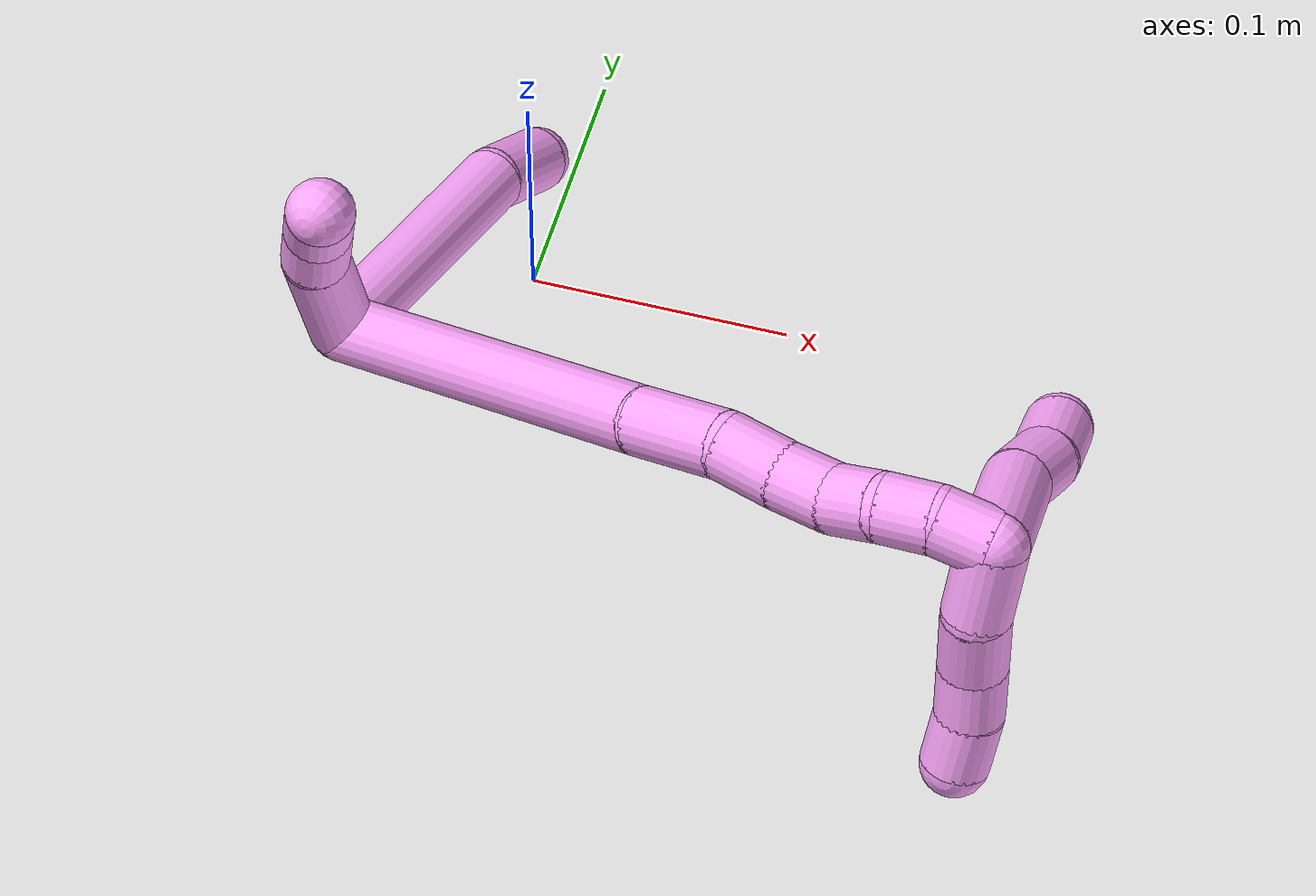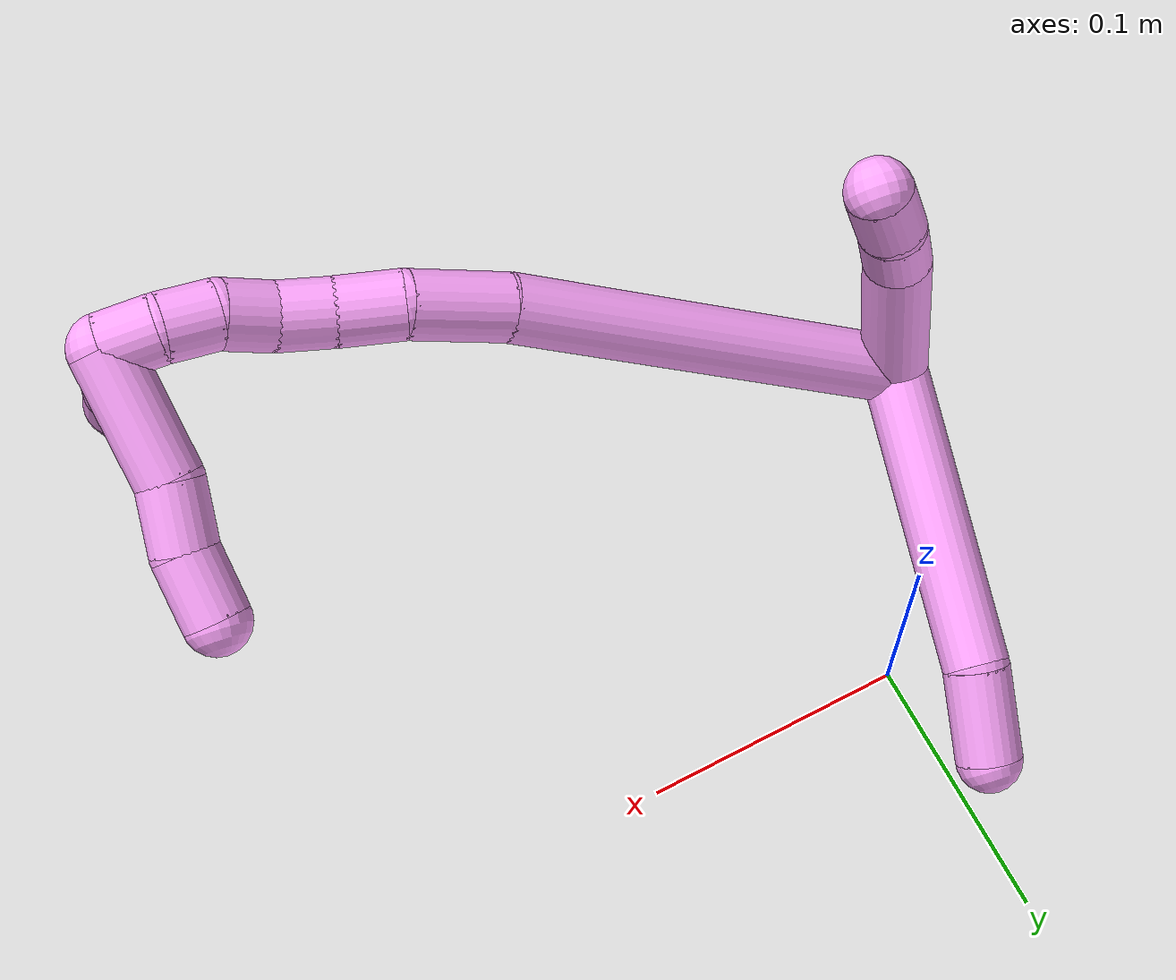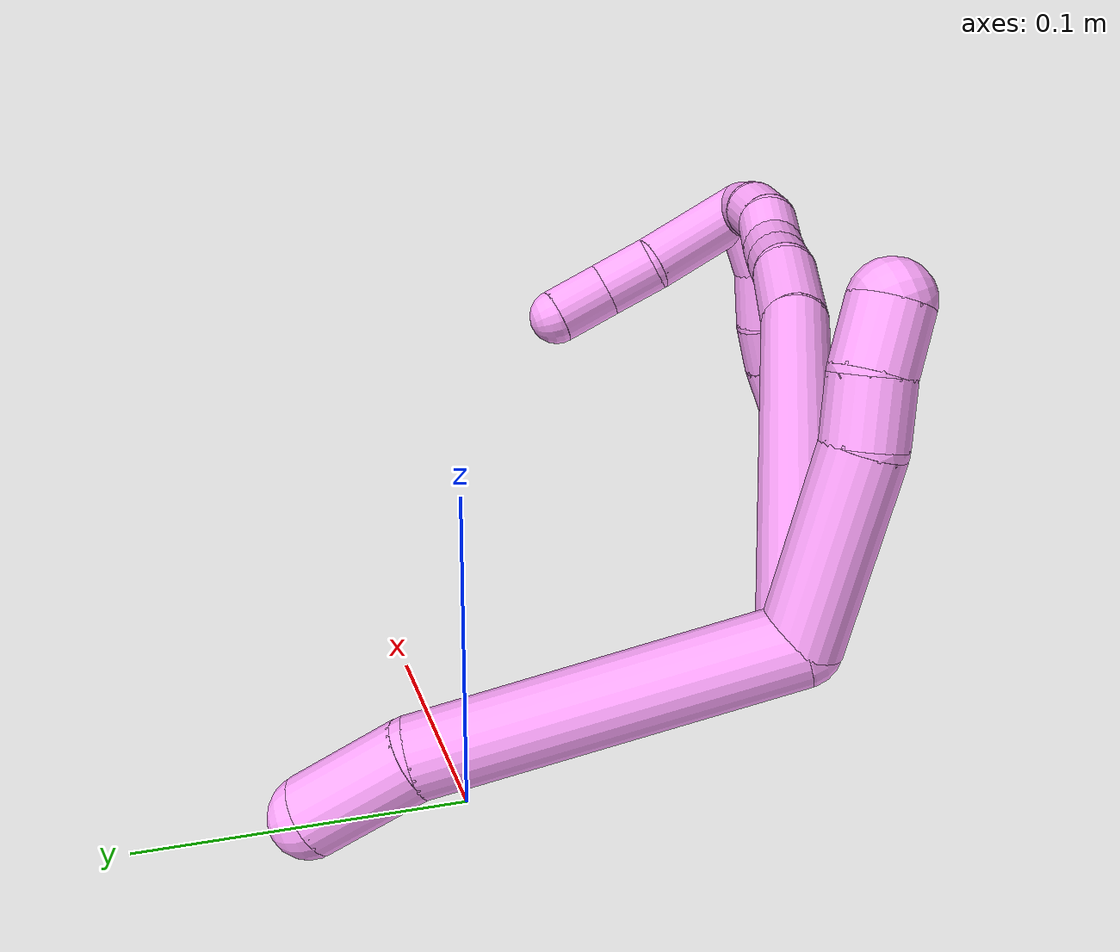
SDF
<sdf version="1.7">
 <world name="default">
  <model name="4">
   <static>0</static>
   <link name="4">
    <collision name="collision-cylinder-e_1_2_8">
     <pose>0.001575 -0.003906 0.05709 0.068304 0.027525 0.00094</pose>
     <geometry><cylinder><radius>0.0125</radius><length>0.114491</length></cylinder></geometry>
     <surface>
      <friction><ode><mu>1.16</mu><mu2>1.16</mu2><slip1>0</slip1><slip2>0</slip2></ode></friction>
      <contact><ode><kp>1e+06</kp><kd>1</kd><max_vel>0</max_vel><min_depth>0.001</min_depth></ode></contact>
     </surface>
    </collision>
    <visual name="visual-cylinder-e_1_2_8">
     <pose>0.001575 -0.003906 0.05709 0.068304 0.027525 0.00094</pose>
     <geometry><cylinder><radius>0.0125</radius><length>0.114491</length></cylinder></geometry>
     <material><ambient>1 0.65098 0.996078 1</ambient></material>
    </visual>
    <collision name="collision-cylinder-e_2_8_6">
     <pose>0.007248 -0.005704 0.131327 -0.122273 0.232853 -0.014318</pose>
     <geometry><cylinder><radius>0.0125</radius><length>0.035509</length></cylinder></geometry>
     <surface>
      <friction><ode><mu>1.16</mu><mu2>1.16</mu2><slip1>0</slip1><slip2>0</slip2></ode></friction>
      <contact><ode><kp>1e+06</kp><kd>1</kd><max_vel>0</max_vel><min_depth>0.001</min_depth></ode></contact>
     </surface>
    </collision>
    <visual name="visual-cylinder-e_2_8_6">
     <pose>0.007248 -0.005704 0.131327 -0.122273 0.232853 -0.014318</pose>
     <geometry><cylinder><radius>0.0125</radius><length>0.035509</length></cylinder></geometry>
     <material><ambient>1 0.65098 0.996078 1</ambient></material>
    </visual>
    <collision name="collision-cylinder-e_1_2_9">
     <pose>-0.014471 -0.020177 -0.016267 2.24931 -0.509227 -0.996654</pose>
     <geometry><cylinder><radius>0.0125</radius><length>0.059367</length></cylinder></geometry>
     <surface>
      <friction><ode><mu>1.16</mu><mu2>1.16</mu2><slip1>0</slip1><slip2>0</slip2></ode></friction>
      <contact><ode><kp>1e+06</kp><kd>1</kd><max_vel>0</max_vel><min_depth>0.001</min_depth></ode></contact>
     </surface>
    </collision>
    <visual name="visual-cylinder-e_1_2_9">
     <pose>-0.014471 -0.020177 -0.016267 2.24931 -0.509227 -0.996654</pose>
     <geometry><cylinder><radius>0.0125</radius><length>0.059367</length></cylinder></geometry>
     <material><ambient>1 0.65098 0.996078 1</ambient></material>
    </visual>
    <collision name="collision-cylinder-e_2_9_10">
     <pose>-0.032756 -0.04866 -0.036722 2.03785 -0.389118 -0.619503</pose>
     <geometry><cylinder><radius>0.0125</radius><length>0.020109</length></cylinder></geometry>
     <surface>
      <friction><ode><mu>1.16</mu><mu2>1.16</mu2><slip1>0</slip1><slip2>0</slip2></ode></friction>
      <contact><ode><kp>1e+06</kp><kd>1</kd><max_vel>0</max_vel><min_depth>0.001</min_depth></ode></contact>
     </surface>
    </collision>
    <visual name="visual-cylinder-e_2_9_10">
     <pose>-0.032756 -0.04866 -0.036722 2.03785 -0.389118 -0.619503</pose>
     <geometry><cylinder><radius>0.0125</radius><length>0.020109</length></cylinder></geometry>
     <material><ambient>1 0.65098 0.996078 1</ambient></material>
    </visual>
    <collision name="collision-cylinder-e_3_10_5">
     <pose>-0.03925 -0.064974 -0.046743 2.20028 -0.264136 -0.510778</pose>
     <geometry><cylinder><radius>0.0125</radius><length>0.020524</length></cylinder></geometry>
     <surface>
      <friction><ode><mu>1.16</mu><mu2>1.16</mu2><slip1>0</slip1><slip2>0</slip2></ode></friction>
      <contact><ode><kp>1e+06</kp><kd>1</kd><max_vel>0</max_vel><min_depth>0.001</min_depth></ode></contact>
     </surface>
    </collision>
    <visual name="visual-cylinder-e_3_10_5">
     <pose>-0.03925 -0.064974 -0.046743 2.20028 -0.264136 -0.510778</pose>
     <geometry><cylinder><radius>0.0125</radius><length>0.020524</length></cylinder></geometry>
     <material><ambient>1 0.65098 0.996078 1</ambient></material>
    </visual>
    <collision name="collision-cylinder-e_1_2_11">
     <pose>0.041832 -0.05983 -0.028301 2.01263 0.563644 0.857713</pose>
     <geometry><cylinder><radius>0.0125</radius><length>0.156594</length></cylinder></geometry>
     <surface>
      <friction><ode><mu>1.16</mu><mu2>1.16</mu2><slip1>0</slip1><slip2>0</slip2></ode></friction>
      <contact><ode><kp>1e+06</kp><kd>1</kd><max_vel>0</max_vel><min_depth>0.001</min_depth></ode></contact>
     </surface>
    </collision>
    <visual name="visual-cylinder-e_1_2_11">
     <pose>0.041832 -0.05983 -0.028301 2.01263 0.563644 0.857713</pose>
     <geometry><cylinder><radius>0.0125</radius><length>0.156594</length></cylinder></geometry>
     <material><ambient>1 0.65098 0.996078 1</ambient></material>
    </visual>
    <collision name="collision-cylinder-e_2_11_12">
     <pose>0.094992 -0.133749 -0.061439 1.90157 0.650171 0.882157</pose>
     <geometry><cylinder><radius>0.0125</radius><length>0.03743</length></cylinder></geometry>
     <surface>
      <friction><ode><mu>1.16</mu><mu2>1.16</mu2><slip1>0</slip1><slip2>0</slip2></ode></friction>
      <contact><ode><kp>1e+06</kp><kd>1</kd><max_vel>0</max_vel><min_depth>0.001</min_depth></ode></contact>
     </surface>
    </collision>
    <visual name="visual-cylinder-e_2_11_12">
     <pose>0.094992 -0.133749 -0.061439 1.90157 0.650171 0.882157</pose>
     <geometry><cylinder><radius>0.0125</radius><length>0.03743</length></cylinder></geometry>
     <material><ambient>1 0.65098 0.996078 1</ambient></material>
    </visual>
    <collision name="collision-cylinder-e_3_12_13">
     <pose>0.116181 -0.154563 -0.06852 1.89261 0.947481 1.23661</pose>
     <geometry><cylinder><radius>0.0125</radius><length>0.024289</length></cylinder></geometry>
     <surface>
      <friction><ode><mu>1.16</mu><mu2>1.16</mu2><slip1>0</slip1><slip2>0</slip2></ode></friction>
      <contact><ode><kp>1e+06</kp><kd>1</kd><max_vel>0</max_vel><min_depth>0.001</min_depth></ode></contact>
     </surface>
    </collision>
    <visual name="visual-cylinder-e_3_12_13">
     <pose>0.116181 -0.154563 -0.06852 1.89261 0.947481 1.23661</pose>
     <geometry><cylinder><radius>0.0125</radius><length>0.024289</length></cylinder></geometry>
     <material><ambient>1 0.65098 0.996078 1</ambient></material>
    </visual>
    <collision name="collision-cylinder-e_4_13_14">
     <pose>0.133965 -0.167853 -0.072923 1.88885 0.853455 1.12203</pose>
     <geometry><cylinder><radius>0.0125</radius><length>0.021029</length></cylinder></geometry>
     <surface>
      <friction><ode><mu>1.16</mu><mu2>1.16</mu2><slip1>0</slip1><slip2>0</slip2></ode></friction>
      <contact><ode><kp>1e+06</kp><kd>1</kd><max_vel>0</max_vel><min_depth>0.001</min_depth></ode></contact>
     </surface>
    </collision>
    <visual name="visual-cylinder-e_4_13_14">
     <pose>0.133965 -0.167853 -0.072923 1.88885 0.853455 1.12203</pose>
     <geometry><cylinder><radius>0.0125</radius><length>0.021029</length></cylinder></geometry>
     <material><ambient>1 0.65098 0.996078 1</ambient></material>
    </visual>
    <collision name="collision-cylinder-e_5_14_15">
     <pose>0.147187 -0.182677 -0.077588 1.86515 0.550681 0.727796</pose>
     <geometry><cylinder><radius>0.0125</radius><length>0.020252</length></cylinder></geometry>
     <surface>
      <friction><ode><mu>1.16</mu><mu2>1.16</mu2><slip1>0</slip1><slip2>0</slip2></ode></friction>
      <contact><ode><kp>1e+06</kp><kd>1</kd><max_vel>0</max_vel><min_depth>0.001</min_depth></ode></contact>
     </surface>
    </collision>
    <visual name="visual-cylinder-e_5_14_15">
     <pose>0.147187 -0.182677 -0.077588 1.86515 0.550681 0.727796</pose>
     <geometry><cylinder><radius>0.0125</radius><length>0.020252</length></cylinder></geometry>
     <material><ambient>1 0.65098 0.996078 1</ambient></material>
    </visual>
    <collision name="collision-cylinder-e_6_15_16">
     <pose>0.159695 -0.197946 -0.080234 1.59114 0.799232 0.813919</pose>
     <geometry><cylinder><radius>0.0125</radius><length>0.020115</length></cylinder></geometry>
     <surface>
      <friction><ode><mu>1.16</mu><mu2>1.16</mu2><slip1>0</slip1><slip2>0</slip2></ode></friction>
      <contact><ode><kp>1e+06</kp><kd>1</kd><max_vel>0</max_vel><min_depth>0.001</min_depth></ode></contact>
     </surface>
    </collision>
    <visual name="visual-cylinder-e_6_15_16">
     <pose>0.159695 -0.197946 -0.080234 1.59114 0.799232 0.813919</pose>
     <geometry><cylinder><radius>0.0125</radius><length>0.020115</length></cylinder></geometry>
     <material><ambient>1 0.65098 0.996078 1</ambient></material>
    </visual>
    <collision name="collision-cylinder-e_7_16_1">
     <pose>0.175722 -0.209962 -0.080017 1.49898 1.05343 0.992093</pose>
     <geometry><cylinder><radius>0.0125</radius><length>0.020292</length></cylinder></geometry>
     <surface>
      <friction><ode><mu>1.16</mu><mu2>1.16</mu2><slip1>0</slip1><slip2>0</slip2></ode></friction>
      <contact><ode><kp>1e+06</kp><kd>1</kd><max_vel>0</max_vel><min_depth>0.001</min_depth></ode></contact>
     </surface>
    </collision>
    <visual name="visual-cylinder-e_7_16_1">
     <pose>0.175722 -0.209962 -0.080017 1.49898 1.05343 0.992093</pose>
     <geometry><cylinder><radius>0.0125</radius><length>0.020292</length></cylinder></geometry>
     <material><ambient>1 0.65098 0.996078 1</ambient></material>
    </visual>
    <collision name="collision-cylinder-e_1_1_17">
     <pose>0.183601 -0.209273 -0.055533 -0.23179 -0.037861 0.004408</pose>
     <geometry><cylinder><radius>0.0125</radius><length>0.049608</length></cylinder></geometry>
     <surface>
      <friction><ode><mu>1.16</mu><mu2>1.16</mu2><slip1>0</slip1><slip2>0</slip2></ode></friction>
      <contact><ode><kp>1e+06</kp><kd>1</kd><max_vel>0</max_vel><min_depth>0.001</min_depth></ode></contact>
     </surface>
    </collision>
    <visual name="visual-cylinder-e_1_1_17">
     <pose>0.183601 -0.209273 -0.055533 -0.23179 -0.037861 0.004408</pose>
     <geometry><cylinder><radius>0.0125</radius><length>0.049608</length></cylinder></geometry>
     <material><ambient>1 0.65098 0.996078 1</ambient></material>
    </visual>
    <collision name="collision-cylinder-e_2_17_18">
     <pose>0.184916 -0.202434 -0.019254 -0.093916 0.182505 -0.0086</pose>
     <geometry><cylinder><radius>0.0125</radius><length>0.024832</length></cylinder></geometry>
     <surface>
      <friction><ode><mu>1.16</mu><mu2>1.16</mu2><slip1>0</slip1><slip2>0</slip2></ode></friction>
      <contact><ode><kp>1e+06</kp><kd>1</kd><max_vel>0</max_vel><min_depth>0.001</min_depth></ode></contact>
     </surface>
    </collision>
    <visual name="visual-cylinder-e_2_17_18">
     <pose>0.184916 -0.202434 -0.019254 -0.093916 0.182505 -0.0086</pose>
     <geometry><cylinder><radius>0.0125</radius><length>0.024832</length></cylinder></geometry>
     <material><ambient>1 0.65098 0.996078 1</ambient></material>
    </visual>
    <collision name="collision-cylinder-e_3_18_4">
     <pose>0.186727 -0.198911 0.005451 -0.187316 -0.034603 0.003251</pose>
     <geometry><cylinder><radius>0.0125</radius><length>0.02556</length></cylinder></geometry>
     <surface>
      <friction><ode><mu>1.16</mu><mu2>1.16</mu2><slip1>0</slip1><slip2>0</slip2></ode></friction>
      <contact><ode><kp>1e+06</kp><kd>1</kd><max_vel>0</max_vel><min_depth>0.001</min_depth></ode></contact>
     </surface>
    </collision>
    <visual name="visual-cylinder-e_3_18_4">
     <pose>0.186727 -0.198911 0.005451 -0.187316 -0.034603 0.003251</pose>
     <geometry><cylinder><radius>0.0125</radius><length>0.02556</length></cylinder></geometry>
     <material><ambient>1 0.65098 0.996078 1</ambient></material>
    </visual>
    <collision name="collision-cylinder-e_1_1_19">
     <pose>0.192824 -0.202577 -0.080003 -1.59872 0.589104 -0.604803</pose>
     <geometry><cylinder><radius>0.0125</radius><length>0.029817</length></cylinder></geometry>
     <surface>
      <friction><ode><mu>1.16</mu><mu2>1.16</mu2><slip1>0</slip1><slip2>0</slip2></ode></friction>
      <contact><ode><kp>1e+06</kp><kd>1</kd><max_vel>0</max_vel><min_depth>0.001</min_depth></ode></contact>
     </surface>
    </collision>
    <visual name="visual-cylinder-e_1_1_19">
     <pose>0.192824 -0.202577 -0.080003 -1.59872 0.589104 -0.604803</pose>
     <geometry><cylinder><radius>0.0125</radius><length>0.029817</length></cylinder></geometry>
     <material><ambient>1 0.65098 0.996078 1</ambient></material>
    </visual>
    <collision name="collision-cylinder-e_2_19_20">
     <pose>0.20894 -0.180035 -0.077349 -1.28345 0.637086 -0.483206</pose>
     <geometry><cylinder><radius>0.0125</radius><length>0.026336</length></cylinder></geometry>
     <surface>
      <friction><ode><mu>1.16</mu><mu2>1.16</mu2><slip1>0</slip1><slip2>0</slip2></ode></friction>
      <contact><ode><kp>1e+06</kp><kd>1</kd><max_vel>0</max_vel><min_depth>0.001</min_depth></ode></contact>
     </surface>
    </collision>
    <visual name="visual-cylinder-e_2_19_20">
     <pose>0.20894 -0.180035 -0.077349 -1.28345 0.637086 -0.483206</pose>
     <geometry><cylinder><radius>0.0125</radius><length>0.026336</length></cylinder></geometry>
     <material><ambient>1 0.65098 0.996078 1</ambient></material>
    </visual>
    <collision name="collision-cylinder-e_3_20_21">
     <pose>0.223763 -0.161698 -0.073645 -1.48499 0.704903 -0.651042</pose>
     <geometry><cylinder><radius>0.0125</radius><length>0.021577</length></cylinder></geometry>
     <surface>
      <friction><ode><mu>1.16</mu><mu2>1.16</mu2><slip1>0</slip1><slip2>0</slip2></ode></friction>
      <contact><ode><kp>1e+06</kp><kd>1</kd><max_vel>0</max_vel><min_depth>0.001</min_depth></ode></contact>
     </surface>
    </collision>
    <visual name="visual-cylinder-e_3_20_21">
     <pose>0.223763 -0.161698 -0.073645 -1.48499 0.704903 -0.651042</pose>
     <geometry><cylinder><radius>0.0125</radius><length>0.021577</length></cylinder></geometry>
     <material><ambient>1 0.65098 0.996078 1</ambient></material>
    </visual>
    <collision name="collision-cylinder-e_4_21_3">
     <pose>0.236642 -0.144063 -0.073229 -1.60125 0.557138 -0.57345</pose>
     <geometry><cylinder><radius>0.0125</radius><length>0.022271</length></cylinder></geometry>
     <surface>
      <friction><ode><mu>1.16</mu><mu2>1.16</mu2><slip1>0</slip1><slip2>0</slip2></ode></friction>
      <contact><ode><kp>1e+06</kp><kd>1</kd><max_vel>0</max_vel><min_depth>0.001</min_depth></ode></contact>
     </surface>
    </collision>
    <visual name="visual-cylinder-e_4_21_3">
     <pose>0.236642 -0.144063 -0.073229 -1.60125 0.557138 -0.57345</pose>
     <geometry><cylinder><radius>0.0125</radius><length>0.022271</length></cylinder></geometry>
     <material><ambient>1 0.65098 0.996078 1</ambient></material>
    </visual>
    <collision name="collision-sphere-3">
     <pose>0.24253 -0.134616 -0.073516 0 -0 0</pose>
     <geometry><sphere><radius>0.0125</radius></sphere></geometry>
     <surface>
      <friction><ode><mu>1.16</mu><mu2>1.16</mu2><slip1>0</slip1><slip2>0</slip2></ode></friction>
      <contact><ode><kp>1e+06</kp><kd>1</kd><max_vel>0</max_vel><min_depth>0.001</min_depth></ode></contact>
     </surface>
    </collision>
    <visual name="visual-sphere-3">
     <pose>0.24253 -0.134616 -0.073516 0 -0 0</pose>
     <geometry><sphere><radius>0.0125</radius></sphere></geometry>
     <material><ambient>1 0.65098 0.996078 1</ambient></material>
    </visual>
    <collision name="collision-sphere-21">
     <pose>0.230754 -0.15351 -0.072941 0 -0 0</pose>
     <geometry><sphere><radius>0.0125</radius></sphere></geometry>
     <surface>
      <friction><ode><mu>1.16</mu><mu2>1.16</mu2><slip1>0</slip1><slip2>0</slip2></ode></friction>
      <contact><ode><kp>1e+06</kp><kd>1</kd><max_vel>0</max_vel><min_depth>0.001</min_depth></ode></contact>
     </surface>
    </collision>
    <visual name="visual-sphere-21">
     <pose>0.230754 -0.15351 -0.072941 0 -0 0</pose>
     <geometry><sphere><radius>0.0125</radius></sphere></geometry>
     <material><ambient>1 0.65098 0.996078 1</ambient></material>
    </visual>
    <collision name="collision-sphere-20">
     <pose>0.216773 -0.169885 -0.074349 0 -0 0</pose>
     <geometry><sphere><radius>0.0125</radius></sphere></geometry>
     <surface>
      <friction><ode><mu>1.16</mu><mu2>1.16</mu2><slip1>0</slip1><slip2>0</slip2></ode></friction>
      <contact><ode><kp>1e+06</kp><kd>1</kd><max_vel>0</max_vel><min_depth>0.001</min_depth></ode></contact>
     </surface>
    </collision>
    <visual name="visual-sphere-20">
     <pose>0.216773 -0.169885 -0.074349 0 -0 0</pose>
     <geometry><sphere><radius>0.0125</radius></sphere></geometry>
     <material><ambient>1 0.65098 0.996078 1</ambient></material>
    </visual>
    <collision name="collision-sphere-19">
     <pose>0.201107 -0.190186 -0.080349 0 -0 0</pose>
     <geometry><sphere><radius>0.0125</radius></sphere></geometry>
     <surface>
      <friction><ode><mu>1.16</mu><mu2>1.16</mu2><slip1>0</slip1><slip2>0</slip2></ode></friction>
      <contact><ode><kp>1e+06</kp><kd>1</kd><max_vel>0</max_vel><min_depth>0.001</min_depth></ode></contact>
     </surface>
    </collision>
    <visual name="visual-sphere-19">
     <pose>0.201107 -0.190186 -0.080349 0 -0 0</pose>
     <geometry><sphere><radius>0.0125</radius></sphere></geometry>
     <material><ambient>1 0.65098 0.996078 1</ambient></material>
    </visual>
    <collision name="collision-sphere-5">
     <pose>-0.041929 -0.072982 -0.052574 0 -0 0</pose>
     <geometry><sphere><radius>0.0125</radius></sphere></geometry>
     <surface>
      <friction><ode><mu>1.16</mu><mu2>1.16</mu2><slip1>0</slip1><slip2>0</slip2></ode></friction>
      <contact><ode><kp>1e+06</kp><kd>1</kd><max_vel>0</max_vel><min_depth>0.001</min_depth></ode></contact>
     </surface>
    </collision>
    <visual name="visual-sphere-5">
     <pose>-0.041929 -0.072982 -0.052574 0 -0 0</pose>
     <geometry><sphere><radius>0.0125</radius></sphere></geometry>
     <material><ambient>1 0.65098 0.996078 1</ambient></material>
    </visual>
    <collision name="collision-sphere-10">
     <pose>-0.03657 -0.056967 -0.040911 0 -0 0</pose>
     <geometry><sphere><radius>0.0125</radius></sphere></geometry>
     <surface>
      <friction><ode><mu>1.16</mu><mu2>1.16</mu2><slip1>0</slip1><slip2>0</slip2></ode></friction>
      <contact><ode><kp>1e+06</kp><kd>1</kd><max_vel>0</max_vel><min_depth>0.001</min_depth></ode></contact>
     </surface>
    </collision>
    <visual name="visual-sphere-10">
     <pose>-0.03657 -0.056967 -0.040911 0 -0 0</pose>
     <geometry><sphere><radius>0.0125</radius></sphere></geometry>
     <material><ambient>1 0.65098 0.996078 1</ambient></material>
    </visual>
    <collision name="collision-sphere-6">
     <pose>0.011345 -0.003597 0.148473 0 -0 0</pose>
     <geometry><sphere><radius>0.0125</radius></sphere></geometry>
     <surface>
      <friction><ode><mu>1.16</mu><mu2>1.16</mu2><slip1>0</slip1><slip2>0</slip2></ode></friction>
      <contact><ode><kp>1e+06</kp><kd>1</kd><max_vel>0</max_vel><min_depth>0.001</min_depth></ode></contact>
     </surface>
    </collision>
    <visual name="visual-sphere-6">
     <pose>0.011345 -0.003597 0.148473 0 -0 0</pose>
     <geometry><sphere><radius>0.0125</radius></sphere></geometry>
     <material><ambient>1 0.65098 0.996078 1</ambient></material>
    </visual>
    <collision name="collision-sphere-9">
     <pose>-0.028942 -0.040354 -0.032533 0 -0 0</pose>
     <geometry><sphere><radius>0.0125</radius></sphere></geometry>
     <surface>
      <friction><ode><mu>1.16</mu><mu2>1.16</mu2><slip1>0</slip1><slip2>0</slip2></ode></friction>
      <contact><ode><kp>1e+06</kp><kd>1</kd><max_vel>0</max_vel><min_depth>0.001</min_depth></ode></contact>
     </surface>
    </collision>
    <visual name="visual-sphere-9">
     <pose>-0.028942 -0.040354 -0.032533 0 -0 0</pose>
     <geometry><sphere><radius>0.0125</radius></sphere></geometry>
     <material><ambient>1 0.65098 0.996078 1</ambient></material>
    </visual>
    <collision name="collision-sphere-2">
     <geometry><sphere><radius>0.0125</radius></sphere></geometry>
     <surface>
      <friction><ode><mu>1.16</mu><mu2>1.16</mu2><slip1>0</slip1><slip2>0</slip2></ode></friction>
      <contact><ode><kp>1e+06</kp><kd>1</kd><max_vel>0</max_vel><min_depth>0.001</min_depth></ode></contact>
     </surface>
    </collision>
    <visual name="visual-sphere-2">
     <geometry><sphere><radius>0.0125</radius></sphere></geometry>
     <material><ambient>1 0.65098 0.996078 1</ambient></material>
    </visual>
    <collision name="collision-sphere-8">
     <pose>0.003151 -0.007811 0.114181 0 -0 0</pose>
     <geometry><sphere><radius>0.0125</radius></sphere></geometry>
     <surface>
      <friction><ode><mu>1.16</mu><mu2>1.16</mu2><slip1>0</slip1><slip2>0</slip2></ode></friction>
      <contact><ode><kp>1e+06</kp><kd>1</kd><max_vel>0</max_vel><min_depth>0.001</min_depth></ode></contact>
     </surface>
    </collision>
    <visual name="visual-sphere-8">
     <pose>0.003151 -0.007811 0.114181 0 -0 0</pose>
     <geometry><sphere><radius>0.0125</radius></sphere></geometry>
     <material><ambient>1 0.65098 0.996078 1</ambient></material>
    </visual>
    <collision name="collision-sphere-11">
     <pose>0.083663 -0.119659 -0.056601 0 -0 0</pose>
     <geometry><sphere><radius>0.0125</radius></sphere></geometry>
     <surface>
      <friction><ode><mu>1.16</mu><mu2>1.16</mu2><slip1>0</slip1><slip2>0</slip2></ode></friction>
      <contact><ode><kp>1e+06</kp><kd>1</kd><max_vel>0</max_vel><min_depth>0.001</min_depth></ode></contact>
     </surface>
    </collision>
    <visual name="visual-sphere-11">
     <pose>0.083663 -0.119659 -0.056601 0 -0 0</pose>
     <geometry><sphere><radius>0.0125</radius></sphere></geometry>
     <material><ambient>1 0.65098 0.996078 1</ambient></material>
    </visual>
    <collision name="collision-sphere-12">
     <pose>0.106321 -0.147838 -0.066277 0 -0 0</pose>
     <geometry><sphere><radius>0.0125</radius></sphere></geometry>
     <surface>
      <friction><ode><mu>1.16</mu><mu2>1.16</mu2><slip1>0</slip1><slip2>0</slip2></ode></friction>
      <contact><ode><kp>1e+06</kp><kd>1</kd><max_vel>0</max_vel><min_depth>0.001</min_depth></ode></contact>
     </surface>
    </collision>
    <visual name="visual-sphere-12">
     <pose>0.106321 -0.147838 -0.066277 0 -0 0</pose>
     <geometry><sphere><radius>0.0125</radius></sphere></geometry>
     <material><ambient>1 0.65098 0.996078 1</ambient></material>
    </visual>
    <collision name="collision-sphere-13">
     <pose>0.126042 -0.161288 -0.070762 0 -0 0</pose>
     <geometry><sphere><radius>0.0125</radius></sphere></geometry>
     <surface>
      <friction><ode><mu>1.16</mu><mu2>1.16</mu2><slip1>0</slip1><slip2>0</slip2></ode></friction>
      <contact><ode><kp>1e+06</kp><kd>1</kd><max_vel>0</max_vel><min_depth>0.001</min_depth></ode></contact>
     </surface>
    </collision>
    <visual name="visual-sphere-13">
     <pose>0.126042 -0.161288 -0.070762 0 -0 0</pose>
     <geometry><sphere><radius>0.0125</radius></sphere></geometry>
     <material><ambient>1 0.65098 0.996078 1</ambient></material>
    </visual>
    <collision name="collision-sphere-14">
     <pose>0.141888 -0.174419 -0.075085 0 -0 0</pose>
     <geometry><sphere><radius>0.0125</radius></sphere></geometry>
     <surface>
      <friction><ode><mu>1.16</mu><mu2>1.16</mu2><slip1>0</slip1><slip2>0</slip2></ode></friction>
      <contact><ode><kp>1e+06</kp><kd>1</kd><max_vel>0</max_vel><min_depth>0.001</min_depth></ode></contact>
     </surface>
    </collision>
    <visual name="visual-sphere-14">
     <pose>0.141888 -0.174419 -0.075085 0 -0 0</pose>
     <geometry><sphere><radius>0.0125</radius></sphere></geometry>
     <material><ambient>1 0.65098 0.996078 1</ambient></material>
    </visual>
    <collision name="collision-sphere-15">
     <pose>0.152485 -0.190934 -0.080092 0 -0 0</pose>
     <geometry><sphere><radius>0.0125</radius></sphere></geometry>
     <surface>
      <friction><ode><mu>1.16</mu><mu2>1.16</mu2><slip1>0</slip1><slip2>0</slip2></ode></friction>
      <contact><ode><kp>1e+06</kp><kd>1</kd><max_vel>0</max_vel><min_depth>0.001</min_depth></ode></contact>
     </surface>
    </collision>
    <visual name="visual-sphere-15">
     <pose>0.152485 -0.190934 -0.080092 0 -0 0</pose>
     <geometry><sphere><radius>0.0125</radius></sphere></geometry>
     <material><ambient>1 0.65098 0.996078 1</ambient></material>
    </visual>
    <collision name="collision-sphere-16">
     <pose>0.166904 -0.204957 -0.080377 0 -0 0</pose>
     <geometry><sphere><radius>0.0125</radius></sphere></geometry>
     <surface>
      <friction><ode><mu>1.16</mu><mu2>1.16</mu2><slip1>0</slip1><slip2>0</slip2></ode></friction>
      <contact><ode><kp>1e+06</kp><kd>1</kd><max_vel>0</max_vel><min_depth>0.001</min_depth></ode></contact>
     </surface>
    </collision>
    <visual name="visual-sphere-16">
     <pose>0.166904 -0.204957 -0.080377 0 -0 0</pose>
     <geometry><sphere><radius>0.0125</radius></sphere></geometry>
     <material><ambient>1 0.65098 0.996078 1</ambient></material>
    </visual>
    <collision name="collision-sphere-1">
     <pose>0.18454 -0.214967 -0.079657 0 -0 0</pose>
     <geometry><sphere><radius>0.0125</radius></sphere></geometry>
     <surface>
      <friction><ode><mu>1.16</mu><mu2>1.16</mu2><slip1>0</slip1><slip2>0</slip2></ode></friction>
      <contact><ode><kp>1e+06</kp><kd>1</kd><max_vel>0</max_vel><min_depth>0.001</min_depth></ode></contact>
     </surface>
    </collision>
    <visual name="visual-sphere-1">
     <pose>0.18454 -0.214967 -0.079657 0 -0 0</pose>
     <geometry><sphere><radius>0.0125</radius></sphere></geometry>
     <material><ambient>1 0.65098 0.996078 1</ambient></material>
    </visual>
    <collision name="collision-sphere-18">
     <pose>0.187169 -0.201289 -0.007098 0 -0 0</pose>
     <geometry><sphere><radius>0.0125</radius></sphere></geometry>
     <surface>
      <friction><ode><mu>1.16</mu><mu2>1.16</mu2><slip1>0</slip1><slip2>0</slip2></ode></friction>
      <contact><ode><kp>1e+06</kp><kd>1</kd><max_vel>0</max_vel><min_depth>0.001</min_depth></ode></contact>
     </surface>
    </collision>
    <visual name="visual-sphere-18">
     <pose>0.187169 -0.201289 -0.007098 0 -0 0</pose>
     <geometry><sphere><radius>0.0125</radius></sphere></geometry>
     <material><ambient>1 0.65098 0.996078 1</ambient></material>
    </visual>
    <collision name="collision-sphere-17">
     <pose>0.182663 -0.203579 -0.03141 0 -0 0</pose>
     <geometry><sphere><radius>0.0125</radius></sphere></geometry>
     <surface>
      <friction><ode><mu>1.16</mu><mu2>1.16</mu2><slip1>0</slip1><slip2>0</slip2></ode></friction>
      <contact><ode><kp>1e+06</kp><kd>1</kd><max_vel>0</max_vel><min_depth>0.001</min_depth></ode></contact>
     </surface>
    </collision>
    <visual name="visual-sphere-17">
     <pose>0.182663 -0.203579 -0.03141 0 -0 0</pose>
     <geometry><sphere><radius>0.0125</radius></sphere></geometry>
     <material><ambient>1 0.65098 0.996078 1</ambient></material>
    </visual>
    <collision name="collision-sphere-4">
     <pose>0.186285 -0.196532 0.018 0 -0 0</pose>
     <geometry><sphere><radius>0.0125</radius></sphere></geometry>
     <surface>
      <friction><ode><mu>1.16</mu><mu2>1.16</mu2><slip1>0</slip1><slip2>0</slip2></ode></friction>
      <contact><ode><kp>1e+06</kp><kd>1</kd><max_vel>0</max_vel><min_depth>0.001</min_depth></ode></contact>
     </surface>
    </collision>
    <visual name="visual-sphere-4">
     <pose>0.186285 -0.196532 0.018 0 -0 0</pose>
     <geometry><sphere><radius>0.0125</radius></sphere></geometry>
     <material><ambient>1 0.65098 0.996078 1</ambient></material>
    </visual>
    <inertial>
     <pose>0.084588 -0.100976 -0.022584 0 -0 0</pose>
     <mass>0.75</mass>
     <inertia>
      <ixx>0.000569</ixx>
      <ixy>0</ixy>
      <ixz>0</ixz>
      <iyy>0.000368</iyy>
      <iyz>0</iyz>
      <izz>9.8e-05</izz>
     </inertia>
    </inertial>
   </link>
   <pose>-0.04603 -0.086984 0.062567 -1.96266 0.58119 -0.380144</pose>
  </model>
 </world>
</sdf>
